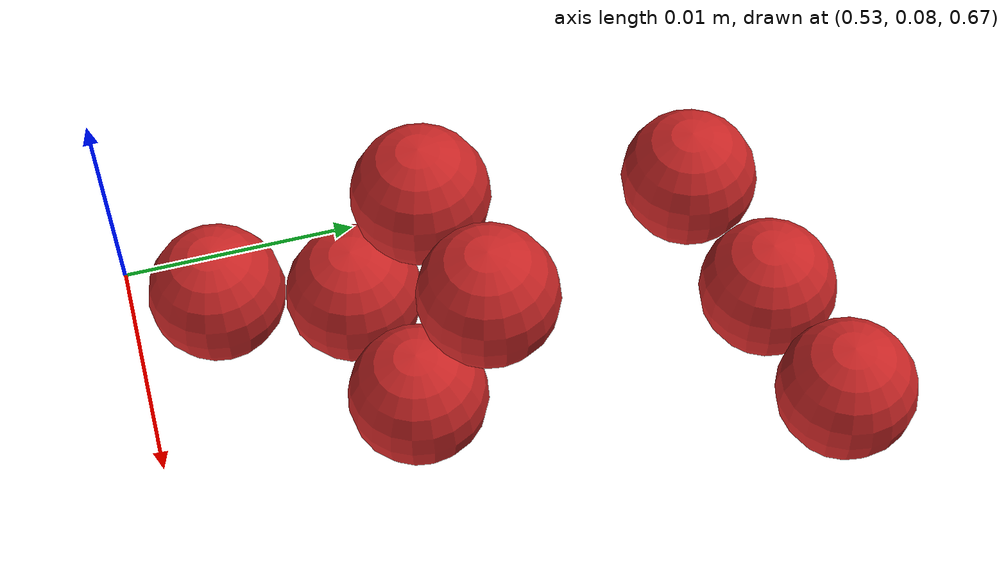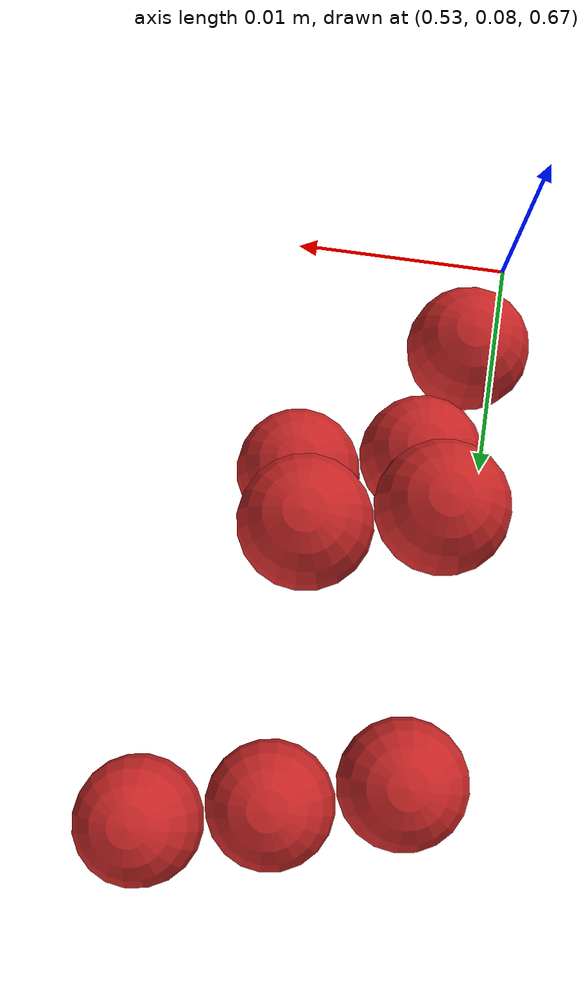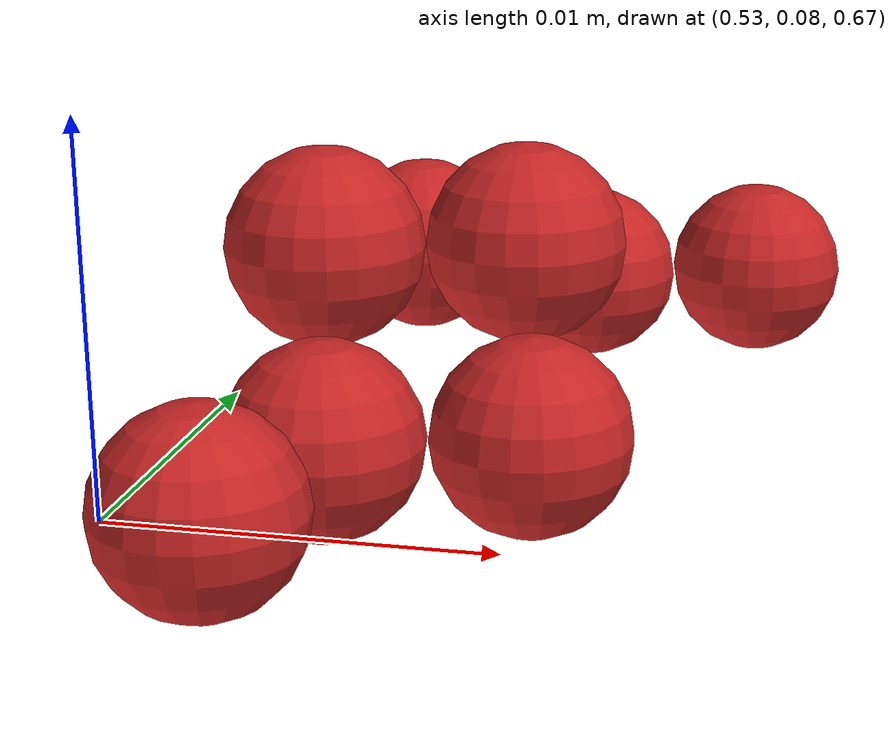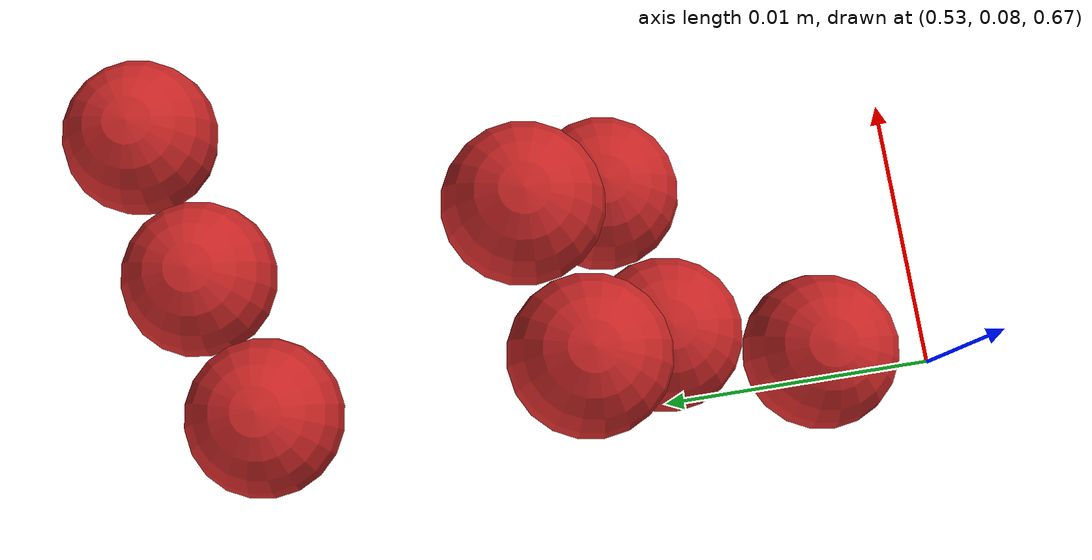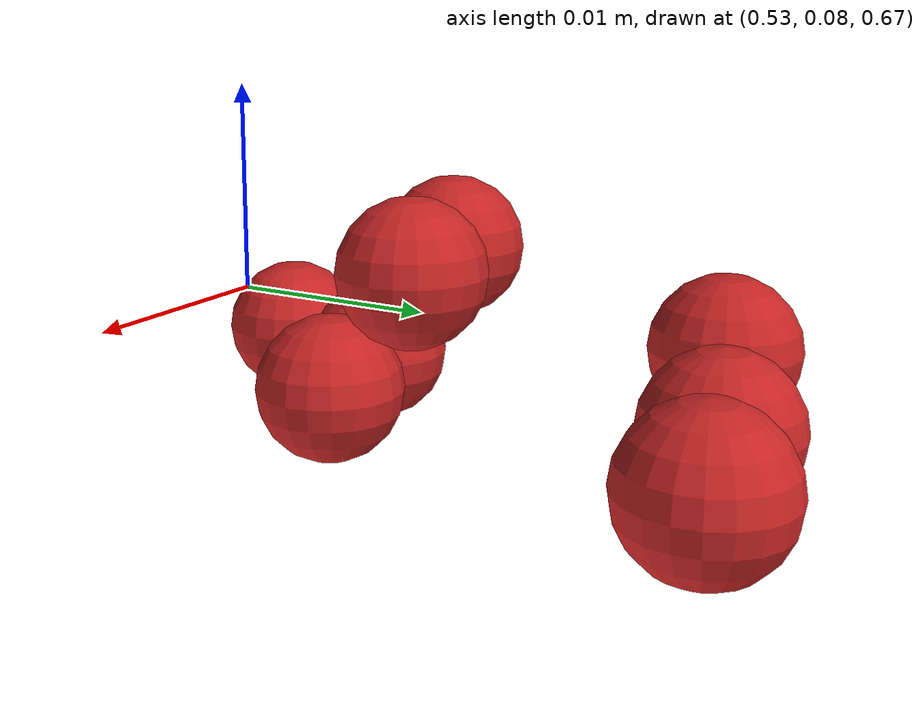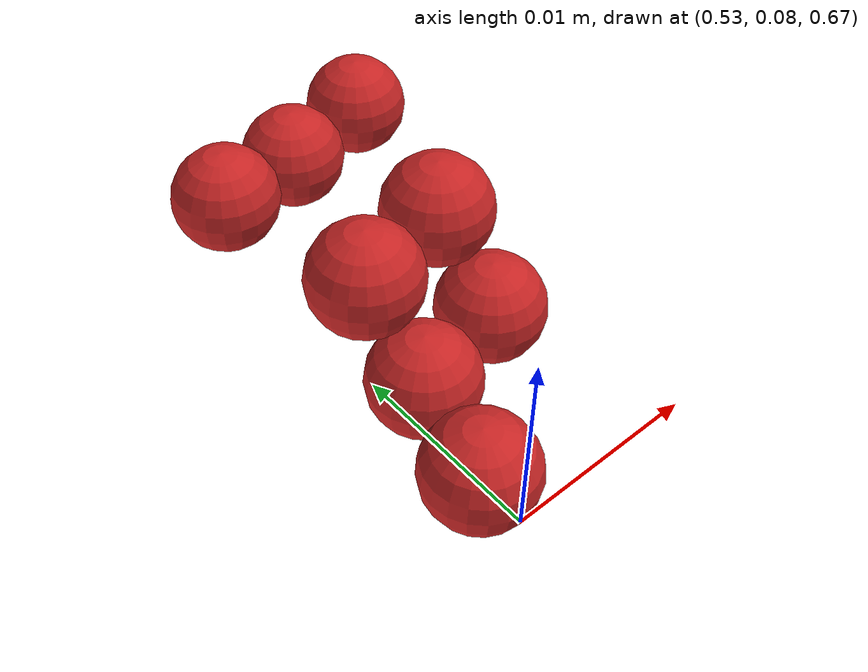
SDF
<sdf version="1.4">
 <world name="default">
  <model name="ground_plane">
   <static>1</static>
   <link name="link">
    <collision name="collision">
     <geometry><plane><normal>0 0 1</normal><size>100 100</size></plane></geometry>
     <surface><friction><ode><mu>100</mu><mu2>50</mu2></ode></friction></surface>
    </collision>
    <visual name="visual">
     <cast_shadows>0</cast_shadows>
     <geometry><plane><normal>0 0 1</normal><size>100 100</size></plane></geometry>
     <material>
      <script><uri>file://media/materials/scripts/gazebo.material</uri><name>Gazebo/Grey</name></script>
     </material>
    </visual>
    <velocity_decay><linear>0</linear><angular>0</angular></velocity_decay>
   </link>
  </model>
  <model name="sphere4">
   <pose>-0.003405 0.010831 -0.026081 0.000968 -2.2e-05 0</pose>
   <link name="link">
    <pose>0.534545 0.073517 0.694885 0 -0 0</pose>
    <inertial>
     <mass>1e-08</mass>
     <inertia><ixx>4e-08</ixx><ixy>0</ixy><ixz>0</ixz><iyy>4e-08</iyy><iyz>0</iyz><izz>4e-08</izz></inertia>
    </inertial>
    <collision name="collision">
     <surface>
      <bounce><restitution_coefficient>0.5</restitution_coefficient><threshold>0</threshold></bounce>
      <contact><ode><kp>1e+08</kp><kd>1</kd></ode></contact>
      <friction><ode><mu>1e-06</mu><mu2>1e-06</mu2></ode></friction>
     </surface>
     <geometry><sphere><radius>0.003</radius></sphere></geometry>
    </collision>
    <visual name="visual">
     <geometry><sphere><radius>0.003</radius></sphere></geometry>
     <material>
      <script><uri>file://media/materials/scripts/gazebo.material</uri><name>Gazebo/Red</name></script>
     </material>
    </visual>
    <velocity_decay><linear>0</linear><angular>0</angular></velocity_decay>
   </link>
   <static>0</static>
  </model>
  <model name="sphere25">
   <pose>-0.002157 0.011226 -0.031824 -0.000268 0.000216 -6.61745e-24</pose>
   <link name="link">
    <pose>0.540545 0.079517 0.700885 0 -0 0</pose>
    <inertial>
     <mass>1e-08</mass>
     <inertia><ixx>4e-08</ixx><ixy>0</ixy><ixz>0</ixz><iyy>4e-08</iyy><iyz>0</iyz><izz>4e-08</izz></inertia>
    </inertial>
    <collision name="collision">
     <surface>
      <bounce><restitution_coefficient>0.5</restitution_coefficient><threshold>0</threshold></bounce>
      <contact><ode><kp>1e+08</kp><kd>1</kd></ode></contact>
      <friction><ode><mu>1e-06</mu><mu2>1e-06</mu2></ode></friction>
     </surface>
     <geometry><sphere><radius>0.003</radius></sphere></geometry>
    </collision>
    <visual name="visual">
     <geometry><sphere><radius>0.003</radius></sphere></geometry>
     <material>
      <script><uri>file://media/materials/scripts/gazebo.material</uri><name>Gazebo/Red</name></script>
     </material>
    </visual>
    <velocity_decay><linear>0</linear><angular>0</angular></velocity_decay>
   </link>
   <static>0</static>
  </model>
  <model name="sphere44">
   <pose>-0.002358 0.019445 -0.036284 -0.000405 -0.000583 -0.000692</pose>
   <link name="link">
    <pose>0.534545 0.085517 0.706885 0 -0 0</pose>
    <inertial>
     <mass>1e-08</mass>
     <inertia><ixx>4e-08</ixx><ixy>0</ixy><ixz>0</ixz><iyy>4e-08</iyy><iyz>0</iyz><izz>4e-08</izz></inertia>
    </inertial>
    <collision name="collision">
     <surface>
      <bounce><restitution_coefficient>0.5</restitution_coefficient><threshold>0</threshold></bounce>
      <contact><ode><kp>1e+08</kp><kd>1</kd></ode></contact>
      <friction><ode><mu>1e-06</mu><mu2>1e-06</mu2></ode></friction>
     </surface>
     <geometry><sphere><radius>0.003</radius></sphere></geometry>
    </collision>
    <visual name="visual">
     <geometry><sphere><radius>0.003</radius></sphere></geometry>
     <material>
      <script><uri>file://media/materials/scripts/gazebo.material</uri><name>Gazebo/Red</name></script>
     </material>
    </visual>
    <velocity_decay><linear>0</linear><angular>0</angular></velocity_decay>
   </link>
   <static>0</static>
  </model>
  <model name="sphere45">
   <pose>-0.002799 0.021104 -0.037337 -0.000127 -0.000224 1e-05</pose>
   <link name="link">
    <pose>0.540545 0.085517 0.706885 0 -0 0</pose>
    <inertial>
     <mass>1e-08</mass>
     <inertia><ixx>4e-08</ixx><ixy>0</ixy><ixz>0</ixz><iyy>4e-08</iyy><iyz>0</iyz><izz>4e-08</izz></inertia>
    </inertial>
    <collision name="collision">
     <surface>
      <bounce><restitution_coefficient>0.5</restitution_coefficient><threshold>0</threshold></bounce>
      <contact><ode><kp>1e+08</kp><kd>1</kd></ode></contact>
      <friction><ode><mu>1e-06</mu><mu2>1e-06</mu2></ode></friction>
     </surface>
     <geometry><sphere><radius>0.003</radius></sphere></geometry>
    </collision>
    <visual name="visual">
     <geometry><sphere><radius>0.003</radius></sphere></geometry>
     <material>
      <script><uri>file://media/materials/scripts/gazebo.material</uri><name>Gazebo/Red</name></script>
     </material>
    </visual>
    <velocity_decay><linear>0</linear><angular>0</angular></velocity_decay>
   </link>
   <static>0</static>
  </model>
  <model name="sphere46">
   <pose>-0.003276 0.022634 -0.037028 -0.00018 0.000177 -0.000153</pose>
   <link name="link">
    <pose>0.546545 0.085517 0.706885 0 -0 0</pose>
    <inertial>
     <mass>1e-08</mass>
     <inertia><ixx>4e-08</ixx><ixy>0</ixy><ixz>0</ixz><iyy>4e-08</iyy><iyz>0</iyz><izz>4e-08</izz></inertia>
    </inertial>
    <collision name="collision">
     <surface>
      <bounce><restitution_coefficient>0.5</restitution_coefficient><threshold>0</threshold></bounce>
      <contact><ode><kp>1e+08</kp><kd>1</kd></ode></contact>
      <friction><ode><mu>1e-06</mu><mu2>1e-06</mu2></ode></friction>
     </surface>
     <geometry><sphere><radius>0.003</radius></sphere></geometry>
    </collision>
    <visual name="visual">
     <geometry><sphere><radius>0.003</radius></sphere></geometry>
     <material>
      <script><uri>file://media/materials/scripts/gazebo.material</uri><name>Gazebo/Red</name></script>
     </material>
    </visual>
    <velocity_decay><linear>0</linear><angular>0</angular></velocity_decay>
   </link>
   <static>0</static>
  </model>
  <model name="sphere88">
   <pose>-0.001732 0.009961 -0.056039 4.5e-05 -0.00012 0</pose>
   <link name="link">
    <pose>0.534545 0.079517 0.724885 0 -0 0</pose>
    <inertial>
     <mass>1e-08</mass>
     <inertia><ixx>4e-08</ixx><ixy>0</ixy><ixz>0</ixz><iyy>4e-08</iyy><iyz>0</iyz><izz>4e-08</izz></inertia>
    </inertial>
    <collision name="collision">
     <surface>
      <bounce><restitution_coefficient>0.5</restitution_coefficient><threshold>0</threshold></bounce>
      <contact><ode><kp>1e+08</kp><kd>1</kd></ode></contact>
      <friction><ode><mu>1e-06</mu><mu2>1e-06</mu2></ode></friction>
     </surface>
     <geometry><sphere><radius>0.003</radius></sphere></geometry>
    </collision>
    <visual name="visual">
     <geometry><sphere><radius>0.003</radius></sphere></geometry>
     <material>
      <script><uri>file://media/materials/scripts/gazebo.material</uri><name>Gazebo/Red</name></script>
     </material>
    </visual>
    <velocity_decay><linear>0</linear><angular>0</angular></velocity_decay>
   </link>
   <static>0</static>
  </model>
  <model name="sphere92">
   <pose>-0.002643 0.007285 -0.051082 0 -0 0</pose>
   <link name="link">
    <pose>0.534545 0.085517 0.724885 0 -0 0</pose>
    <inertial>
     <mass>1e-08</mass>
     <inertia><ixx>4e-08</ixx><ixy>0</ixy><ixz>0</ixz><iyy>4e-08</iyy><iyz>0</iyz><izz>4e-08</izz></inertia>
    </inertial>
    <collision name="collision">
     <surface>
      <bounce><restitution_coefficient>0.5</restitution_coefficient><threshold>0</threshold></bounce>
      <contact><ode><kp>1e+08</kp><kd>1</kd></ode></contact>
      <friction><ode><mu>1e-06</mu><mu2>1e-06</mu2></ode></friction>
     </surface>
     <geometry><sphere><radius>0.003</radius></sphere></geometry>
    </collision>
    <visual name="visual">
     <geometry><sphere><radius>0.003</radius></sphere></geometry>
     <material>
      <script><uri>file://media/materials/scripts/gazebo.material</uri><name>Gazebo/Red</name></script>
     </material>
    </visual>
    <velocity_decay><linear>0</linear><angular>0</angular></velocity_decay>
   </link>
   <static>0</static>
  </model>
  <model name="sphere93">
   <pose>-0.002845 0.00875 -0.051037 -0 -0 -0</pose>
   <link name="link">
    <pose>0.540545 0.085517 0.724885 0 -0 0</pose>
    <inertial>
     <mass>1e-08</mass>
     <inertia><ixx>4e-08</ixx><ixy>0</ixy><ixz>0</ixz><iyy>4e-08</iyy><iyz>0</iyz><izz>4e-08</izz></inertia>
    </inertial>
    <collision name="collision">
     <surface>
      <bounce><restitution_coefficient>0.5</restitution_coefficient><threshold>0</threshold></bounce>
      <contact><ode><kp>1e+08</kp><kd>1</kd></ode></contact>
      <friction><ode><mu>1e-06</mu><mu2>1e-06</mu2></ode></friction>
     </surface>
     <geometry><sphere><radius>0.003</radius></sphere></geometry>
    </collision>
    <visual name="visual">
     <geometry><sphere><radius>0.003</radius></sphere></geometry>
     <material>
      <script><uri>file://media/materials/scripts/gazebo.material</uri><name>Gazebo/Red</name></script>
     </material>
    </visual>
    <velocity_decay><linear>0</linear><angular>0</angular></velocity_decay>
   </link>
   <static>0</static>
  </model>
 </world>
</sdf>
